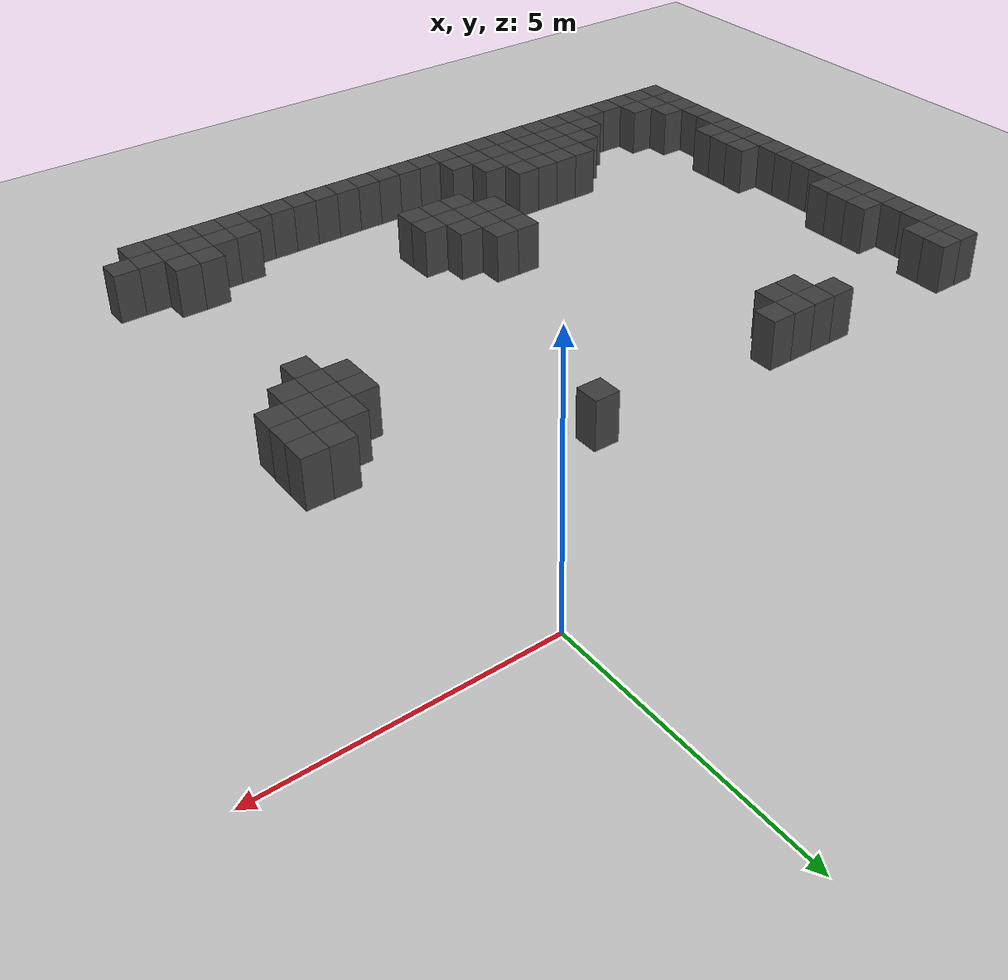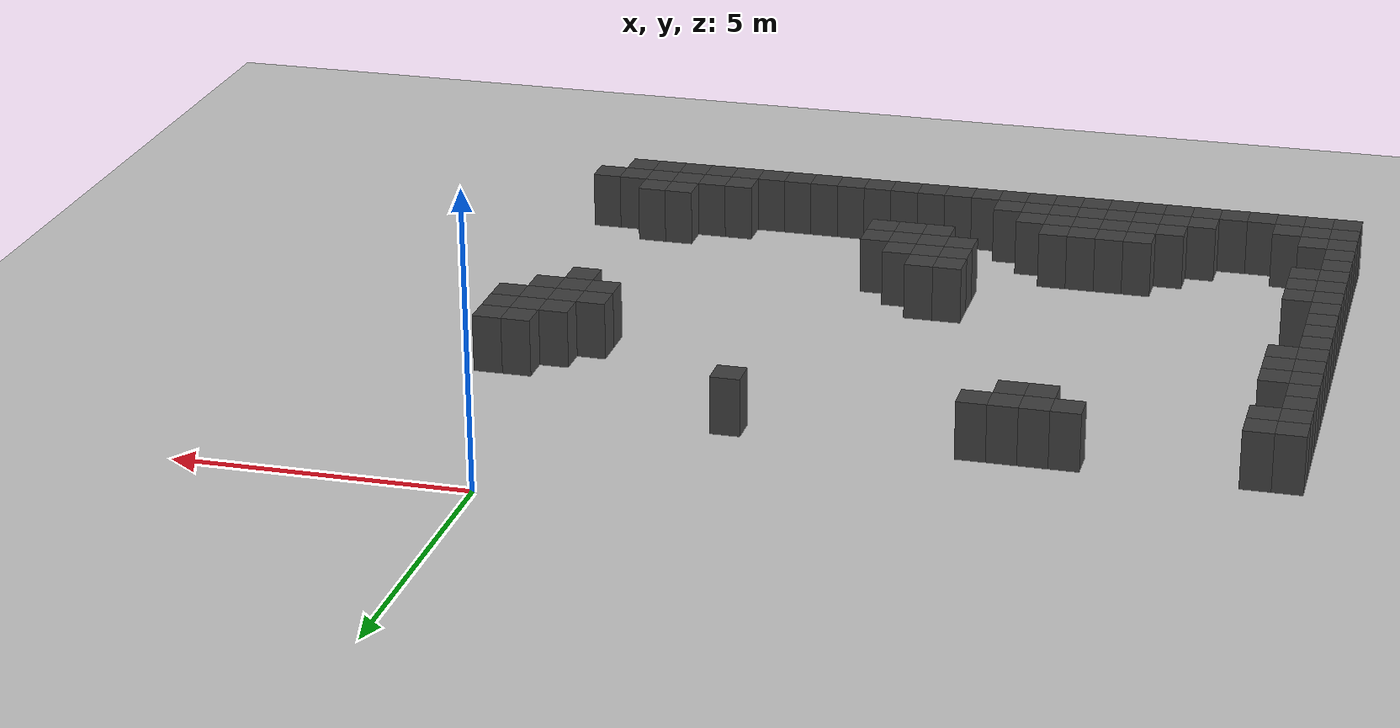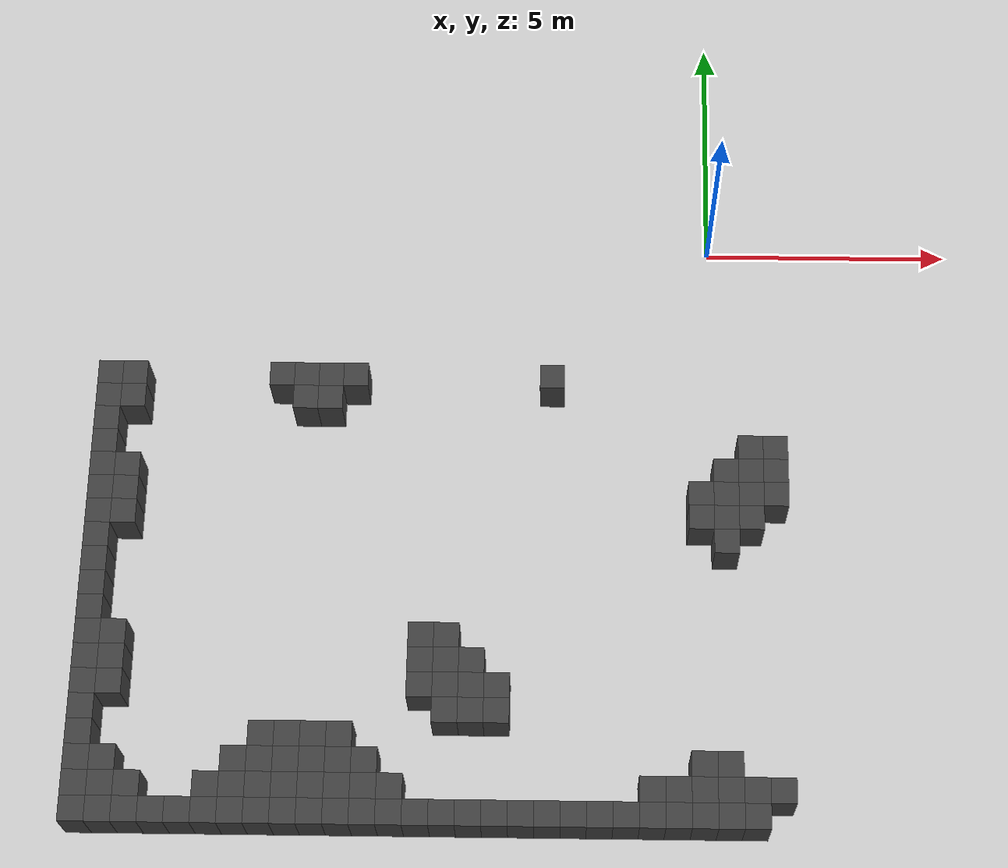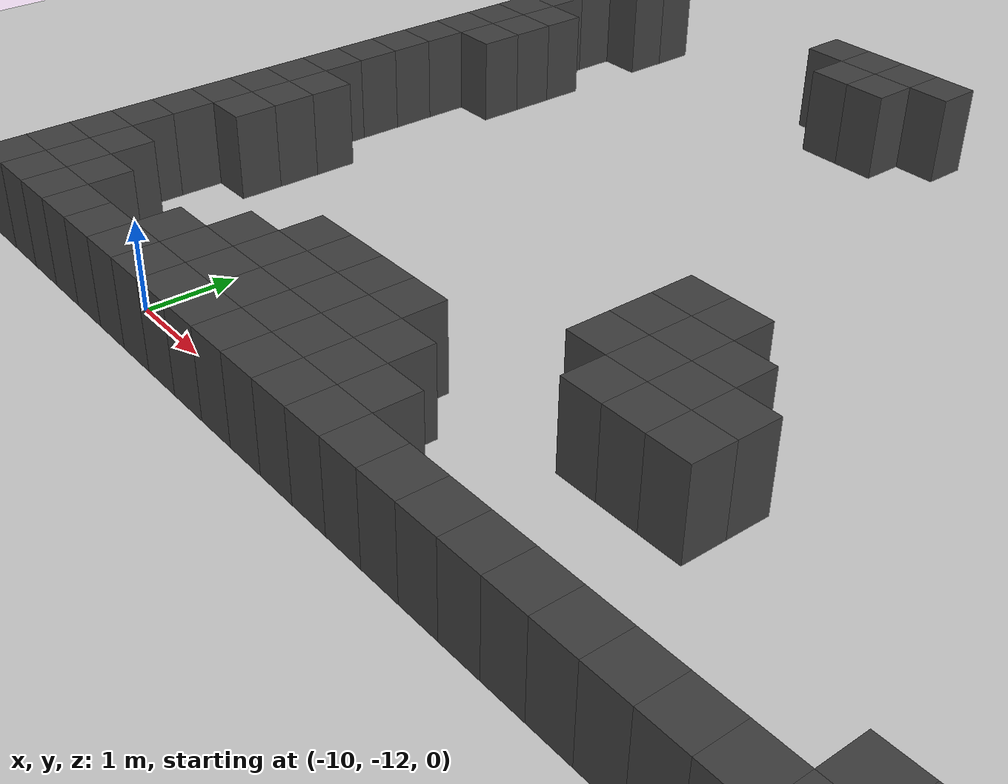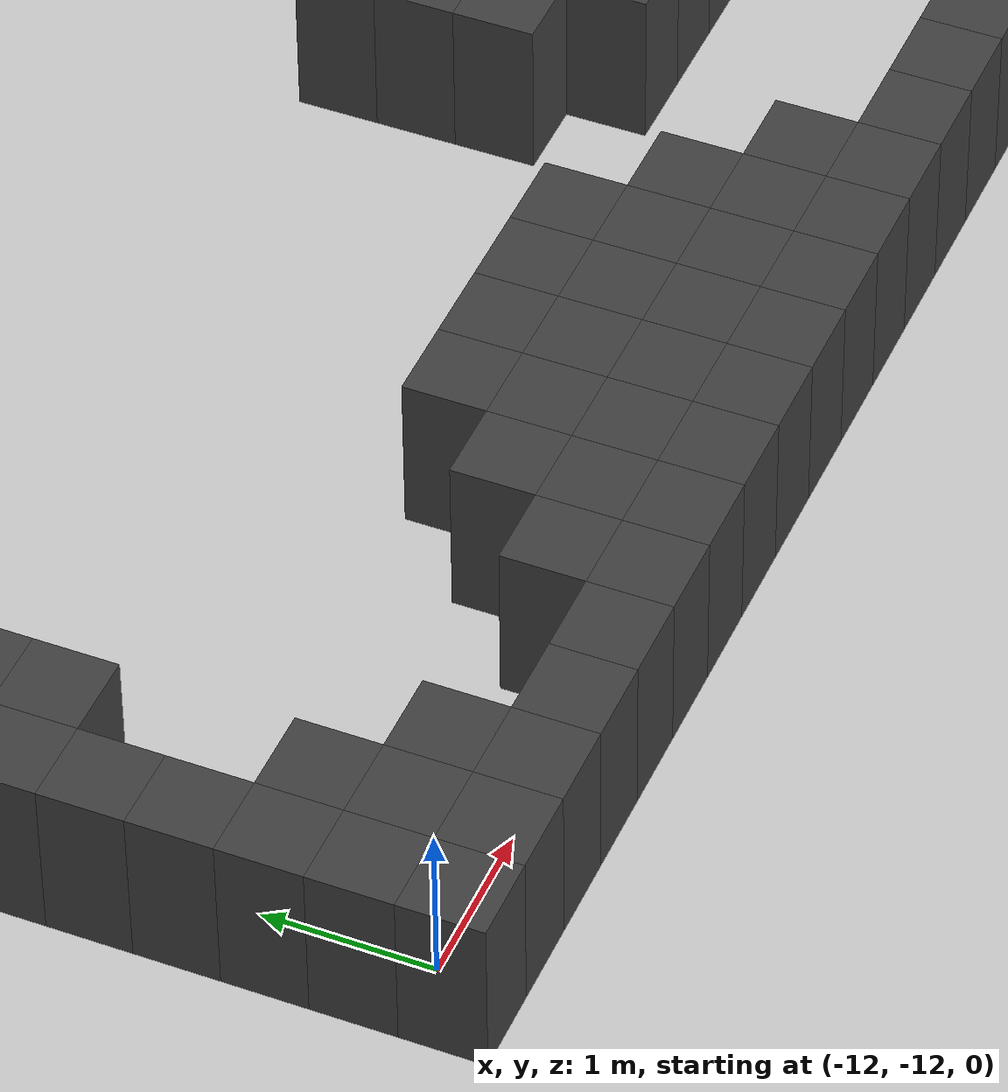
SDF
<sdf version="1.7">
 <world name="map_8829">
  <model name="ground_plane">
   <static>true</static>
   <link name="link">
    <collision name="collision">
     <geometry><plane><normal>0 0 1</normal><size>200 200</size></plane></geometry>
    </collision>
    <visual name="visual">
     <geometry><plane><normal>0 0 1</normal><size>200 200</size></plane></geometry>
     <material><ambient>0.8 0.8 0.8 1</ambient><diffuse>0.8 0.8 0.8 1</diffuse></material>
    </visual>
   </link>
  </model>
  <model name="maze_environment">
   <static>true</static>
   <link name="wall_434">
    <pose>-12.250 -3.250 0.500 0 0 0</pose>
    <collision name="col"><geometry><box><size>0.5 0.5 1.0</size></box></geometry></collision>
    <visual name="vis">
     <geometry><box><size>0.5 0.5 1.0</size></box></geometry>
     <material><ambient>0.15 0.15 0.15 1</ambient><diffuse>0.25 0.25 0.25 1</diffuse></material>
    </visual>
   </link>
   <link name="wall_435">
    <pose>-11.750 -3.250 0.500 0 0 0</pose>
    <collision name="col"><geometry><box><size>0.5 0.5 1.0</size></box></geometry></collision>
    <visual name="vis">
     <geometry><box><size>0.5 0.5 1.0</size></box></geometry>
     <material><ambient>0.15 0.15 0.15 1</ambient><diffuse>0.25 0.25 0.25 1</diffuse></material>
    </visual>
   </link>
   <link name="wall_436">
    <pose>-8.750 -3.250 0.500 0 0 0</pose>
    <collision name="col"><geometry><box><size>0.5 0.5 1.0</size></box></geometry></collision>
    <visual name="vis">
     <geometry><box><size>0.5 0.5 1.0</size></box></geometry>
     <material><ambient>0.15 0.15 0.15 1</ambient><diffuse>0.25 0.25 0.25 1</diffuse></material>
    </visual>
   </link>
   <link name="wall_437">
    <pose>-8.250 -3.250 0.500 0 0 0</pose>
    <collision name="col"><geometry><box><size>0.5 0.5 1.0</size></box></geometry></collision>
    <visual name="vis">
     <geometry><box><size>0.5 0.5 1.0</size></box></geometry>
     <material><ambient>0.15 0.15 0.15 1</ambient><diffuse>0.25 0.25 0.25 1</diffuse></material>
    </visual>
   </link>
   <link name="wall_438">
    <pose>-7.750 -3.250 0.500 0 0 0</pose>
    <collision name="col"><geometry><box><size>0.5 0.5 1.0</size></box></geometry></collision>
    <visual name="vis">
     <geometry><box><size>0.5 0.5 1.0</size></box></geometry>
     <material><ambient>0.15 0.15 0.15 1</ambient><diffuse>0.25 0.25 0.25 1</diffuse></material>
    </visual>
   </link>
   <link name="wall_439">
    <pose>-7.250 -3.250 0.500 0 0 0</pose>
    <collision name="col"><geometry><box><size>0.5 0.5 1.0</size></box></geometry></collision>
    <visual name="vis">
     <geometry><box><size>0.5 0.5 1.0</size></box></geometry>
     <material><ambient>0.15 0.15 0.15 1</ambient><diffuse>0.25 0.25 0.25 1</diffuse></material>
    </visual>
   </link>
   <link name="wall_440">
    <pose>-3.250 -3.250 0.500 0 0 0</pose>
    <collision name="col"><geometry><box><size>0.5 0.5 1.0</size></box></geometry></collision>
    <visual name="vis">
     <geometry><box><size>0.5 0.5 1.0</size></box></geometry>
     <material><ambient>0.15 0.15 0.15 1</ambient><diffuse>0.25 0.25 0.25 1</diffuse></material>
    </visual>
   </link>
   <link name="wall_452">
    <pose>-12.250 -3.750 0.500 0 0 0</pose>
    <collision name="col"><geometry><box><size>0.5 0.5 1.0</size></box></geometry></collision>
    <visual name="vis">
     <geometry><box><size>0.5 0.5 1.0</size></box></geometry>
     <material><ambient>0.15 0.15 0.15 1</ambient><diffuse>0.25 0.25 0.25 1</diffuse></material>
    </visual>
   </link>
   <link name="wall_453">
    <pose>-11.750 -3.750 0.500 0 0 0</pose>
    <collision name="col"><geometry><box><size>0.5 0.5 1.0</size></box></geometry></collision>
    <visual name="vis">
     <geometry><box><size>0.5 0.5 1.0</size></box></geometry>
     <material><ambient>0.15 0.15 0.15 1</ambient><diffuse>0.25 0.25 0.25 1</diffuse></material>
    </visual>
   </link>
   <link name="wall_454">
    <pose>-8.250 -3.750 0.500 0 0 0</pose>
    <collision name="col"><geometry><box><size>0.5 0.5 1.0</size></box></geometry></collision>
    <visual name="vis">
     <geometry><box><size>0.5 0.5 1.0</size></box></geometry>
     <material><ambient>0.15 0.15 0.15 1</ambient><diffuse>0.25 0.25 0.25 1</diffuse></material>
    </visual>
   </link>
   <link name="wall_455">
    <pose>-7.750 -3.750 0.500 0 0 0</pose>
    <collision name="col"><geometry><box><size>0.5 0.5 1.0</size></box></geometry></collision>
    <visual name="vis">
     <geometry><box><size>0.5 0.5 1.0</size></box></geometry>
     <material><ambient>0.15 0.15 0.15 1</ambient><diffuse>0.25 0.25 0.25 1</diffuse></material>
    </visual>
   </link>
   <link name="wall_461">
    <pose>-12.250 -4.250 0.500 0 0 0</pose>
    <collision name="col"><geometry><box><size>0.5 0.5 1.0</size></box></geometry></collision>
    <visual name="vis">
     <geometry><box><size>0.5 0.5 1.0</size></box></geometry>
     <material><ambient>0.15 0.15 0.15 1</ambient><diffuse>0.25 0.25 0.25 1</diffuse></material>
    </visual>
   </link>
   <link name="wall_465">
    <pose>-12.250 -4.750 0.500 0 0 0</pose>
    <collision name="col"><geometry><box><size>0.5 0.5 1.0</size></box></geometry></collision>
    <visual name="vis">
     <geometry><box><size>0.5 0.5 1.0</size></box></geometry>
     <material><ambient>0.15 0.15 0.15 1</ambient><diffuse>0.25 0.25 0.25 1</diffuse></material>
    </visual>
   </link>
   <link name="wall_466">
    <pose>0.750 -4.750 0.500 0 0 0</pose>
    <collision name="col"><geometry><box><size>0.5 0.5 1.0</size></box></geometry></collision>
    <visual name="vis">
     <geometry><box><size>0.5 0.5 1.0</size></box></geometry>
     <material><ambient>0.15 0.15 0.15 1</ambient><diffuse>0.25 0.25 0.25 1</diffuse></material>
    </visual>
   </link>
   <link name="wall_467">
    <pose>1.250 -4.750 0.500 0 0 0</pose>
    <collision name="col"><geometry><box><size>0.5 0.5 1.0</size></box></geometry></collision>
    <visual name="vis">
     <geometry><box><size>0.5 0.5 1.0</size></box></geometry>
     <material><ambient>0.15 0.15 0.15 1</ambient><diffuse>0.25 0.25 0.25 1</diffuse></material>
    </visual>
   </link>
   <link name="wall_471">
    <pose>-12.250 -5.250 0.500 0 0 0</pose>
    <collision name="col"><geometry><box><size>0.5 0.5 1.0</size></box></geometry></collision>
    <visual name="vis">
     <geometry><box><size>0.5 0.5 1.0</size></box></geometry>
     <material><ambient>0.15 0.15 0.15 1</ambient><diffuse>0.25 0.25 0.25 1</diffuse></material>
    </visual>
   </link>
   <link name="wall_472">
    <pose>-11.750 -5.250 0.500 0 0 0</pose>
    <collision name="col"><geometry><box><size>0.5 0.5 1.0</size></box></geometry></collision>
    <visual name="vis">
     <geometry><box><size>0.5 0.5 1.0</size></box></geometry>
     <material><ambient>0.15 0.15 0.15 1</ambient><diffuse>0.25 0.25 0.25 1</diffuse></material>
    </visual>
   </link>
   <link name="wall_473">
    <pose>0.250 -5.250 0.500 0 0 0</pose>
    <collision name="col"><geometry><box><size>0.5 0.5 1.0</size></box></geometry></collision>
    <visual name="vis">
     <geometry><box><size>0.5 0.5 1.0</size></box></geometry>
     <material><ambient>0.15 0.15 0.15 1</ambient><diffuse>0.25 0.25 0.25 1</diffuse></material>
    </visual>
   </link>
   <link name="wall_474">
    <pose>0.750 -5.250 0.500 0 0 0</pose>
    <collision name="col"><geometry><box><size>0.5 0.5 1.0</size></box></geometry></collision>
    <visual name="vis">
     <geometry><box><size>0.5 0.5 1.0</size></box></geometry>
     <material><ambient>0.15 0.15 0.15 1</ambient><diffuse>0.25 0.25 0.25 1</diffuse></material>
    </visual>
   </link>
   <link name="wall_475">
    <pose>1.250 -5.250 0.500 0 0 0</pose>
    <collision name="col"><geometry><box><size>0.5 0.5 1.0</size></box></geometry></collision>
    <visual name="vis">
     <geometry><box><size>0.5 0.5 1.0</size></box></geometry>
     <material><ambient>0.15 0.15 0.15 1</ambient><diffuse>0.25 0.25 0.25 1</diffuse></material>
    </visual>
   </link>
   <link name="wall_485">
    <pose>-12.250 -5.750 0.500 0 0 0</pose>
    <collision name="col"><geometry><box><size>0.5 0.5 1.0</size></box></geometry></collision>
    <visual name="vis">
     <geometry><box><size>0.5 0.5 1.0</size></box></geometry>
     <material><ambient>0.15 0.15 0.15 1</ambient><diffuse>0.25 0.25 0.25 1</diffuse></material>
    </visual>
   </link>
   <link name="wall_486">
    <pose>-11.750 -5.750 0.500 0 0 0</pose>
    <collision name="col"><geometry><box><size>0.5 0.5 1.0</size></box></geometry></collision>
    <visual name="vis">
     <geometry><box><size>0.5 0.5 1.0</size></box></geometry>
     <material><ambient>0.15 0.15 0.15 1</ambient><diffuse>0.25 0.25 0.25 1</diffuse></material>
    </visual>
   </link>
   <link name="wall_487">
    <pose>-0.250 -5.750 0.500 0 0 0</pose>
    <collision name="col"><geometry><box><size>0.5 0.5 1.0</size></box></geometry></collision>
    <visual name="vis">
     <geometry><box><size>0.5 0.5 1.0</size></box></geometry>
     <material><ambient>0.15 0.15 0.15 1</ambient><diffuse>0.25 0.25 0.25 1</diffuse></material>
    </visual>
   </link>
   <link name="wall_488">
    <pose>0.250 -5.750 0.500 0 0 0</pose>
    <collision name="col"><geometry><box><size>0.5 0.5 1.0</size></box></geometry></collision>
    <visual name="vis">
     <geometry><box><size>0.5 0.5 1.0</size></box></geometry>
     <material><ambient>0.15 0.15 0.15 1</ambient><diffuse>0.25 0.25 0.25 1</diffuse></material>
    </visual>
   </link>
   <link name="wall_489">
    <pose>0.750 -5.750 0.500 0 0 0</pose>
    <collision name="col"><geometry><box><size>0.5 0.5 1.0</size></box></geometry></collision>
    <visual name="vis">
     <geometry><box><size>0.5 0.5 1.0</size></box></geometry>
     <material><ambient>0.15 0.15 0.15 1</ambient><diffuse>0.25 0.25 0.25 1</diffuse></material>
    </visual>
   </link>
   <link name="wall_490">
    <pose>1.250 -5.750 0.500 0 0 0</pose>
    <collision name="col"><geometry><box><size>0.5 0.5 1.0</size></box></geometry></collision>
    <visual name="vis">
     <geometry><box><size>0.5 0.5 1.0</size></box></geometry>
     <material><ambient>0.15 0.15 0.15 1</ambient><diffuse>0.25 0.25 0.25 1</diffuse></material>
    </visual>
   </link>
   <link name="wall_502">
    <pose>-12.250 -6.250 0.500 0 0 0</pose>
    <collision name="col"><geometry><box><size>0.5 0.5 1.0</size></box></geometry></collision>
    <visual name="vis">
     <geometry><box><size>0.5 0.5 1.0</size></box></geometry>
     <material><ambient>0.15 0.15 0.15 1</ambient><diffuse>0.25 0.25 0.25 1</diffuse></material>
    </visual>
   </link>
   <link name="wall_503">
    <pose>-11.750 -6.250 0.500 0 0 0</pose>
    <collision name="col"><geometry><box><size>0.5 0.5 1.0</size></box></geometry></collision>
    <visual name="vis">
     <geometry><box><size>0.5 0.5 1.0</size></box></geometry>
     <material><ambient>0.15 0.15 0.15 1</ambient><diffuse>0.25 0.25 0.25 1</diffuse></material>
    </visual>
   </link>
   <link name="wall_504">
    <pose>-0.250 -6.250 0.500 0 0 0</pose>
    <collision name="col"><geometry><box><size>0.5 0.5 1.0</size></box></geometry></collision>
    <visual name="vis">
     <geometry><box><size>0.5 0.5 1.0</size></box></geometry>
     <material><ambient>0.15 0.15 0.15 1</ambient><diffuse>0.25 0.25 0.25 1</diffuse></material>
    </visual>
   </link>
   <link name="wall_505">
    <pose>0.250 -6.250 0.500 0 0 0</pose>
    <collision name="col"><geometry><box><size>0.5 0.5 1.0</size></box></geometry></collision>
    <visual name="vis">
     <geometry><box><size>0.5 0.5 1.0</size></box></geometry>
     <material><ambient>0.15 0.15 0.15 1</ambient><diffuse>0.25 0.25 0.25 1</diffuse></material>
    </visual>
   </link>
   <link name="wall_506">
    <pose>0.750 -6.250 0.500 0 0 0</pose>
    <collision name="col"><geometry><box><size>0.5 0.5 1.0</size></box></geometry></collision>
    <visual name="vis">
     <geometry><box><size>0.5 0.5 1.0</size></box></geometry>
     <material><ambient>0.15 0.15 0.15 1</ambient><diffuse>0.25 0.25 0.25 1</diffuse></material>
    </visual>
   </link>
   <link name="wall_517">
    <pose>-12.250 -6.750 0.500 0 0 0</pose>
    <collision name="col"><geometry><box><size>0.5 0.5 1.0</size></box></geometry></collision>
    <visual name="vis">
     <geometry><box><size>0.5 0.5 1.0</size></box></geometry>
     <material><ambient>0.15 0.15 0.15 1</ambient><diffuse>0.25 0.25 0.25 1</diffuse></material>
    </visual>
   </link>
   <link name="wall_518">
    <pose>0.250 -6.750 0.500 0 0 0</pose>
    <collision name="col"><geometry><box><size>0.5 0.5 1.0</size></box></geometry></collision>
    <visual name="vis">
     <geometry><box><size>0.5 0.5 1.0</size></box></geometry>
     <material><ambient>0.15 0.15 0.15 1</ambient><diffuse>0.25 0.25 0.25 1</diffuse></material>
    </visual>
   </link>
   <link name="wall_527">
    <pose>-12.250 -7.250 0.500 0 0 0</pose>
    <collision name="col"><geometry><box><size>0.5 0.5 1.0</size></box></geometry></collision>
    <visual name="vis">
     <geometry><box><size>0.5 0.5 1.0</size></box></geometry>
     <material><ambient>0.15 0.15 0.15 1</ambient><diffuse>0.25 0.25 0.25 1</diffuse></material>
    </visual>
   </link>
   <link name="wall_534">
    <pose>-12.250 -7.750 0.500 0 0 0</pose>
    <collision name="col"><geometry><box><size>0.5 0.5 1.0</size></box></geometry></collision>
    <visual name="vis">
     <geometry><box><size>0.5 0.5 1.0</size></box></geometry>
     <material><ambient>0.15 0.15 0.15 1</ambient><diffuse>0.25 0.25 0.25 1</diffuse></material>
    </visual>
   </link>
   <link name="wall_538">
    <pose>-12.250 -8.250 0.500 0 0 0</pose>
    <collision name="col"><geometry><box><size>0.5 0.5 1.0</size></box></geometry></collision>
    <visual name="vis">
     <geometry><box><size>0.5 0.5 1.0</size></box></geometry>
     <material><ambient>0.15 0.15 0.15 1</ambient><diffuse>0.25 0.25 0.25 1</diffuse></material>
    </visual>
   </link>
   <link name="wall_542">
    <pose>-12.250 -8.750 0.500 0 0 0</pose>
    <collision name="col"><geometry><box><size>0.5 0.5 1.0</size></box></geometry></collision>
    <visual name="vis">
     <geometry><box><size>0.5 0.5 1.0</size></box></geometry>
     <material><ambient>0.15 0.15 0.15 1</ambient><diffuse>0.25 0.25 0.25 1</diffuse></material>
    </visual>
   </link>
   <link name="wall_543">
    <pose>-11.750 -8.750 0.500 0 0 0</pose>
    <collision name="col"><geometry><box><size>0.5 0.5 1.0</size></box></geometry></collision>
    <visual name="vis">
     <geometry><box><size>0.5 0.5 1.0</size></box></geometry>
     <material><ambient>0.15 0.15 0.15 1</ambient><diffuse>0.25 0.25 0.25 1</diffuse></material>
    </visual>
   </link>
   <link name="wall_544">
    <pose>-5.750 -8.750 0.500 0 0 0</pose>
    <collision name="col"><geometry><box><size>0.5 0.5 1.0</size></box></geometry></collision>
    <visual name="vis">
     <geometry><box><size>0.5 0.5 1.0</size></box></geometry>
     <material><ambient>0.15 0.15 0.15 1</ambient><diffuse>0.25 0.25 0.25 1</diffuse></material>
    </visual>
   </link>
   <link name="wall_545">
    <pose>-5.250 -8.750 0.500 0 0 0</pose>
    <collision name="col"><geometry><box><size>0.5 0.5 1.0</size></box></geometry></collision>
    <visual name="vis">
     <geometry><box><size>0.5 0.5 1.0</size></box></geometry>
     <material><ambient>0.15 0.15 0.15 1</ambient><diffuse>0.25 0.25 0.25 1</diffuse></material>
    </visual>
   </link>
   <link name="wall_549">
    <pose>-12.250 -9.250 0.500 0 0 0</pose>
    <collision name="col"><geometry><box><size>0.5 0.5 1.0</size></box></geometry></collision>
    <visual name="vis">
     <geometry><box><size>0.5 0.5 1.0</size></box></geometry>
     <material><ambient>0.15 0.15 0.15 1</ambient><diffuse>0.25 0.25 0.25 1</diffuse></material>
    </visual>
   </link>
   <link name="wall_550">
    <pose>-11.750 -9.250 0.500 0 0 0</pose>
    <collision name="col"><geometry><box><size>0.5 0.5 1.0</size></box></geometry></collision>
    <visual name="vis">
     <geometry><box><size>0.5 0.5 1.0</size></box></geometry>
     <material><ambient>0.15 0.15 0.15 1</ambient><diffuse>0.25 0.25 0.25 1</diffuse></material>
    </visual>
   </link>
   <link name="wall_551">
    <pose>-5.750 -9.250 0.500 0 0 0</pose>
    <collision name="col"><geometry><box><size>0.5 0.5 1.0</size></box></geometry></collision>
    <visual name="vis">
     <geometry><box><size>0.5 0.5 1.0</size></box></geometry>
     <material><ambient>0.15 0.15 0.15 1</ambient><diffuse>0.25 0.25 0.25 1</diffuse></material>
    </visual>
   </link>
   <link name="wall_552">
    <pose>-5.250 -9.250 0.500 0 0 0</pose>
    <collision name="col"><geometry><box><size>0.5 0.5 1.0</size></box></geometry></collision>
    <visual name="vis">
     <geometry><box><size>0.5 0.5 1.0</size></box></geometry>
     <material><ambient>0.15 0.15 0.15 1</ambient><diffuse>0.25 0.25 0.25 1</diffuse></material>
    </visual>
   </link>
   <link name="wall_553">
    <pose>-4.750 -9.250 0.500 0 0 0</pose>
    <collision name="col"><geometry><box><size>0.5 0.5 1.0</size></box></geometry></collision>
    <visual name="vis">
     <geometry><box><size>0.5 0.5 1.0</size></box></geometry>
     <material><ambient>0.15 0.15 0.15 1</ambient><diffuse>0.25 0.25 0.25 1</diffuse></material>
    </visual>
   </link>
   <link name="wall_557">
    <pose>-12.250 -9.750 0.500 0 0 0</pose>
    <collision name="col"><geometry><box><size>0.5 0.5 1.0</size></box></geometry></collision>
    <visual name="vis">
     <geometry><box><size>0.5 0.5 1.0</size></box></geometry>
     <material><ambient>0.15 0.15 0.15 1</ambient><diffuse>0.25 0.25 0.25 1</diffuse></material>
    </visual>
   </link>
   <link name="wall_558">
    <pose>-11.750 -9.750 0.500 0 0 0</pose>
    <collision name="col"><geometry><box><size>0.5 0.5 1.0</size></box></geometry></collision>
    <visual name="vis">
     <geometry><box><size>0.5 0.5 1.0</size></box></geometry>
     <material><ambient>0.15 0.15 0.15 1</ambient><diffuse>0.25 0.25 0.25 1</diffuse></material>
    </visual>
   </link>
   <link name="wall_559">
    <pose>-5.750 -9.750 0.500 0 0 0</pose>
    <collision name="col"><geometry><box><size>0.5 0.5 1.0</size></box></geometry></collision>
    <visual name="vis">
     <geometry><box><size>0.5 0.5 1.0</size></box></geometry>
     <material><ambient>0.15 0.15 0.15 1</ambient><diffuse>0.25 0.25 0.25 1</diffuse></material>
    </visual>
   </link>
   <link name="wall_560">
    <pose>-5.250 -9.750 0.500 0 0 0</pose>
    <collision name="col"><geometry><box><size>0.5 0.5 1.0</size></box></geometry></collision>
    <visual name="vis">
     <geometry><box><size>0.5 0.5 1.0</size></box></geometry>
     <material><ambient>0.15 0.15 0.15 1</ambient><diffuse>0.25 0.25 0.25 1</diffuse></material>
    </visual>
   </link>
   <link name="wall_561">
    <pose>-4.750 -9.750 0.500 0 0 0</pose>
    <collision name="col"><geometry><box><size>0.5 0.5 1.0</size></box></geometry></collision>
    <visual name="vis">
     <geometry><box><size>0.5 0.5 1.0</size></box></geometry>
     <material><ambient>0.15 0.15 0.15 1</ambient><diffuse>0.25 0.25 0.25 1</diffuse></material>
    </visual>
   </link>
   <link name="wall_562">
    <pose>-4.250 -9.750 0.500 0 0 0</pose>
    <collision name="col"><geometry><box><size>0.5 0.5 1.0</size></box></geometry></collision>
    <visual name="vis">
     <geometry><box><size>0.5 0.5 1.0</size></box></geometry>
     <material><ambient>0.15 0.15 0.15 1</ambient><diffuse>0.25 0.25 0.25 1</diffuse></material>
    </visual>
   </link>
   <link name="wall_566">
    <pose>-12.250 -10.250 0.500 0 0 0</pose>
    <collision name="col"><geometry><box><size>0.5 0.5 1.0</size></box></geometry></collision>
    <visual name="vis">
     <geometry><box><size>0.5 0.5 1.0</size></box></geometry>
     <material><ambient>0.15 0.15 0.15 1</ambient><diffuse>0.25 0.25 0.25 1</diffuse></material>
    </visual>
   </link>
   <link name="wall_567">
    <pose>-5.250 -10.250 0.500 0 0 0</pose>
    <collision name="col"><geometry><box><size>0.5 0.5 1.0</size></box></geometry></collision>
    <visual name="vis">
     <geometry><box><size>0.5 0.5 1.0</size></box></geometry>
     <material><ambient>0.15 0.15 0.15 1</ambient><diffuse>0.25 0.25 0.25 1</diffuse></material>
    </visual>
   </link>
   <link name="wall_568">
    <pose>-4.750 -10.250 0.500 0 0 0</pose>
    <collision name="col"><geometry><box><size>0.5 0.5 1.0</size></box></geometry></collision>
    <visual name="vis">
     <geometry><box><size>0.5 0.5 1.0</size></box></geometry>
     <material><ambient>0.15 0.15 0.15 1</ambient><diffuse>0.25 0.25 0.25 1</diffuse></material>
    </visual>
   </link>
   <link name="wall_569">
    <pose>-4.250 -10.250 0.500 0 0 0</pose>
    <collision name="col"><geometry><box><size>0.5 0.5 1.0</size></box></geometry></collision>
    <visual name="vis">
     <geometry><box><size>0.5 0.5 1.0</size></box></geometry>
     <material><ambient>0.15 0.15 0.15 1</ambient><diffuse>0.25 0.25 0.25 1</diffuse></material>
    </visual>
   </link>
   <link name="wall_574">
    <pose>-12.250 -10.750 0.500 0 0 0</pose>
    <collision name="col"><geometry><box><size>0.5 0.5 1.0</size></box></geometry></collision>
    <visual name="vis">
     <geometry><box><size>0.5 0.5 1.0</size></box></geometry>
     <material><ambient>0.15 0.15 0.15 1</ambient><diffuse>0.25 0.25 0.25 1</diffuse></material>
    </visual>
   </link>
   <link name="wall_575">
    <pose>-8.750 -10.750 0.500 0 0 0</pose>
    <collision name="col"><geometry><box><size>0.5 0.5 1.0</size></box></geometry></collision>
    <visual name="vis">
     <geometry><box><size>0.5 0.5 1.0</size></box></geometry>
     <material><ambient>0.15 0.15 0.15 1</ambient><diffuse>0.25 0.25 0.25 1</diffuse></material>
    </visual>
   </link>
   <link name="wall_576">
    <pose>-8.250 -10.750 0.500 0 0 0</pose>
    <collision name="col"><geometry><box><size>0.5 0.5 1.0</size></box></geometry></collision>
    <visual name="vis">
     <geometry><box><size>0.5 0.5 1.0</size></box></geometry>
     <material><ambient>0.15 0.15 0.15 1</ambient><diffuse>0.25 0.25 0.25 1</diffuse></material>
    </visual>
   </link>
   <link name="wall_577">
    <pose>-7.750 -10.750 0.500 0 0 0</pose>
    <collision name="col"><geometry><box><size>0.5 0.5 1.0</size></box></geometry></collision>
    <visual name="vis">
     <geometry><box><size>0.5 0.5 1.0</size></box></geometry>
     <material><ambient>0.15 0.15 0.15 1</ambient><diffuse>0.25 0.25 0.25 1</diffuse></material>
    </visual>
   </link>
   <link name="wall_578">
    <pose>-7.250 -10.750 0.500 0 0 0</pose>
    <collision name="col"><geometry><box><size>0.5 0.5 1.0</size></box></geometry></collision>
    <visual name="vis">
     <geometry><box><size>0.5 0.5 1.0</size></box></geometry>
     <material><ambient>0.15 0.15 0.15 1</ambient><diffuse>0.25 0.25 0.25 1</diffuse></material>
    </visual>
   </link>
   <link name="wall_583">
    <pose>-12.250 -11.250 0.500 0 0 0</pose>
    <collision name="col"><geometry><box><size>0.5 0.5 1.0</size></box></geometry></collision>
    <visual name="vis">
     <geometry><box><size>0.5 0.5 1.0</size></box></geometry>
     <material><ambient>0.15 0.15 0.15 1</ambient><diffuse>0.25 0.25 0.25 1</diffuse></material>
    </visual>
   </link>
   <link name="wall_584">
    <pose>-11.750 -11.250 0.500 0 0 0</pose>
    <collision name="col"><geometry><box><size>0.5 0.5 1.0</size></box></geometry></collision>
    <visual name="vis">
     <geometry><box><size>0.5 0.5 1.0</size></box></geometry>
     <material><ambient>0.15 0.15 0.15 1</ambient><diffuse>0.25 0.25 0.25 1</diffuse></material>
    </visual>
   </link>
   <link name="wall_585">
    <pose>-9.250 -11.250 0.500 0 0 0</pose>
    <collision name="col"><geometry><box><size>0.5 0.5 1.0</size></box></geometry></collision>
    <visual name="vis">
     <geometry><box><size>0.5 0.5 1.0</size></box></geometry>
     <material><ambient>0.15 0.15 0.15 1</ambient><diffuse>0.25 0.25 0.25 1</diffuse></material>
    </visual>
   </link>
   <link name="wall_586">
    <pose>-8.750 -11.250 0.500 0 0 0</pose>
    <collision name="col"><geometry><box><size>0.5 0.5 1.0</size></box></geometry></collision>
    <visual name="vis">
     <geometry><box><size>0.5 0.5 1.0</size></box></geometry>
     <material><ambient>0.15 0.15 0.15 1</ambient><diffuse>0.25 0.25 0.25 1</diffuse></material>
    </visual>
   </link>
   <link name="wall_587">
    <pose>-8.250 -11.250 0.500 0 0 0</pose>
    <collision name="col"><geometry><box><size>0.5 0.5 1.0</size></box></geometry></collision>
    <visual name="vis">
     <geometry><box><size>0.5 0.5 1.0</size></box></geometry>
     <material><ambient>0.15 0.15 0.15 1</ambient><diffuse>0.25 0.25 0.25 1</diffuse></material>
    </visual>
   </link>
   <link name="wall_588">
    <pose>-7.750 -11.250 0.500 0 0 0</pose>
    <collision name="col"><geometry><box><size>0.5 0.5 1.0</size></box></geometry></collision>
    <visual name="vis">
     <geometry><box><size>0.5 0.5 1.0</size></box></geometry>
     <material><ambient>0.15 0.15 0.15 1</ambient><diffuse>0.25 0.25 0.25 1</diffuse></material>
    </visual>
   </link>
   <link name="wall_589">
    <pose>-7.250 -11.250 0.500 0 0 0</pose>
    <collision name="col"><geometry><box><size>0.5 0.5 1.0</size></box></geometry></collision>
    <visual name="vis">
     <geometry><box><size>0.5 0.5 1.0</size></box></geometry>
     <material><ambient>0.15 0.15 0.15 1</ambient><diffuse>0.25 0.25 0.25 1</diffuse></material>
    </visual>
   </link>
   <link name="wall_590">
    <pose>-6.750 -11.250 0.500 0 0 0</pose>
    <collision name="col"><geometry><box><size>0.5 0.5 1.0</size></box></geometry></collision>
    <visual name="vis">
     <geometry><box><size>0.5 0.5 1.0</size></box></geometry>
     <material><ambient>0.15 0.15 0.15 1</ambient><diffuse>0.25 0.25 0.25 1</diffuse></material>
    </visual>
   </link>
   <link name="wall_591">
    <pose>-0.250 -11.250 0.500 0 0 0</pose>
    <collision name="col"><geometry><box><size>0.5 0.5 1.0</size></box></geometry></collision>
    <visual name="vis">
     <geometry><box><size>0.5 0.5 1.0</size></box></geometry>
     <material><ambient>0.15 0.15 0.15 1</ambient><diffuse>0.25 0.25 0.25 1</diffuse></material>
    </visual>
   </link>
   <link name="wall_592">
    <pose>0.250 -11.250 0.500 0 0 0</pose>
    <collision name="col"><geometry><box><size>0.5 0.5 1.0</size></box></geometry></collision>
    <visual name="vis">
     <geometry><box><size>0.5 0.5 1.0</size></box></geometry>
     <material><ambient>0.15 0.15 0.15 1</ambient><diffuse>0.25 0.25 0.25 1</diffuse></material>
    </visual>
   </link>
   <link name="wall_605">
    <pose>-12.250 -11.750 0.500 0 0 0</pose>
    <collision name="col"><geometry><box><size>0.5 0.5 1.0</size></box></geometry></collision>
    <visual name="vis">
     <geometry><box><size>0.5 0.5 1.0</size></box></geometry>
     <material><ambient>0.15 0.15 0.15 1</ambient><diffuse>0.25 0.25 0.25 1</diffuse></material>
    </visual>
   </link>
   <link name="wall_606">
    <pose>-11.750 -11.750 0.500 0 0 0</pose>
    <collision name="col"><geometry><box><size>0.5 0.5 1.0</size></box></geometry></collision>
    <visual name="vis">
     <geometry><box><size>0.5 0.5 1.0</size></box></geometry>
     <material><ambient>0.15 0.15 0.15 1</ambient><diffuse>0.25 0.25 0.25 1</diffuse></material>
    </visual>
   </link>
   <link name="wall_607">
    <pose>-11.250 -11.750 0.500 0 0 0</pose>
    <collision name="col"><geometry><box><size>0.5 0.5 1.0</size></box></geometry></collision>
    <visual name="vis">
     <geometry><box><size>0.5 0.5 1.0</size></box></geometry>
     <material><ambient>0.15 0.15 0.15 1</ambient><diffuse>0.25 0.25 0.25 1</diffuse></material>
    </visual>
   </link>
   <link name="wall_608">
    <pose>-9.750 -11.750 0.500 0 0 0</pose>
    <collision name="col"><geometry><box><size>0.5 0.5 1.0</size></box></geometry></collision>
    <visual name="vis">
     <geometry><box><size>0.5 0.5 1.0</size></box></geometry>
     <material><ambient>0.15 0.15 0.15 1</ambient><diffuse>0.25 0.25 0.25 1</diffuse></material>
    </visual>
   </link>
   <link name="wall_609">
    <pose>-9.250 -11.750 0.500 0 0 0</pose>
    <collision name="col"><geometry><box><size>0.5 0.5 1.0</size></box></geometry></collision>
    <visual name="vis">
     <geometry><box><size>0.5 0.5 1.0</size></box></geometry>
     <material><ambient>0.15 0.15 0.15 1</ambient><diffuse>0.25 0.25 0.25 1</diffuse></material>
    </visual>
   </link>
   <link name="wall_610">
    <pose>-8.750 -11.750 0.500 0 0 0</pose>
    <collision name="col"><geometry><box><size>0.5 0.5 1.0</size></box></geometry></collision>
    <visual name="vis">
     <geometry><box><size>0.5 0.5 1.0</size></box></geometry>
     <material><ambient>0.15 0.15 0.15 1</ambient><diffuse>0.25 0.25 0.25 1</diffuse></material>
    </visual>
   </link>
   <link name="wall_611">
    <pose>-8.250 -11.750 0.500 0 0 0</pose>
    <collision name="col"><geometry><box><size>0.5 0.5 1.0</size></box></geometry></collision>
    <visual name="vis">
     <geometry><box><size>0.5 0.5 1.0</size></box></geometry>
     <material><ambient>0.15 0.15 0.15 1</ambient><diffuse>0.25 0.25 0.25 1</diffuse></material>
    </visual>
   </link>
   <link name="wall_612">
    <pose>-7.750 -11.750 0.500 0 0 0</pose>
    <collision name="col"><geometry><box><size>0.5 0.5 1.0</size></box></geometry></collision>
    <visual name="vis">
     <geometry><box><size>0.5 0.5 1.0</size></box></geometry>
     <material><ambient>0.15 0.15 0.15 1</ambient><diffuse>0.25 0.25 0.25 1</diffuse></material>
    </visual>
   </link>
   <link name="wall_613">
    <pose>-7.250 -11.750 0.500 0 0 0</pose>
    <collision name="col"><geometry><box><size>0.5 0.5 1.0</size></box></geometry></collision>
    <visual name="vis">
     <geometry><box><size>0.5 0.5 1.0</size></box></geometry>
     <material><ambient>0.15 0.15 0.15 1</ambient><diffuse>0.25 0.25 0.25 1</diffuse></material>
    </visual>
   </link>
   <link name="wall_614">
    <pose>-6.750 -11.750 0.500 0 0 0</pose>
    <collision name="col"><geometry><box><size>0.5 0.5 1.0</size></box></geometry></collision>
    <visual name="vis">
     <geometry><box><size>0.5 0.5 1.0</size></box></geometry>
     <material><ambient>0.15 0.15 0.15 1</ambient><diffuse>0.25 0.25 0.25 1</diffuse></material>
    </visual>
   </link>
   <link name="wall_615">
    <pose>-6.250 -11.750 0.500 0 0 0</pose>
    <collision name="col"><geometry><box><size>0.5 0.5 1.0</size></box></geometry></collision>
    <visual name="vis">
     <geometry><box><size>0.5 0.5 1.0</size></box></geometry>
     <material><ambient>0.15 0.15 0.15 1</ambient><diffuse>0.25 0.25 0.25 1</diffuse></material>
    </visual>
   </link>
   <link name="wall_616">
    <pose>-1.250 -11.750 0.500 0 0 0</pose>
    <collision name="col"><geometry><box><size>0.5 0.5 1.0</size></box></geometry></collision>
    <visual name="vis">
     <geometry><box><size>0.5 0.5 1.0</size></box></geometry>
     <material><ambient>0.15 0.15 0.15 1</ambient><diffuse>0.25 0.25 0.25 1</diffuse></material>
    </visual>
   </link>
   <link name="wall_617">
    <pose>-0.750 -11.750 0.500 0 0 0</pose>
    <collision name="col"><geometry><box><size>0.5 0.5 1.0</size></box></geometry></collision>
    <visual name="vis">
     <geometry><box><size>0.5 0.5 1.0</size></box></geometry>
     <material><ambient>0.15 0.15 0.15 1</ambient><diffuse>0.25 0.25 0.25 1</diffuse></material>
    </visual>
   </link>
   <link name="wall_618">
    <pose>-0.250 -11.750 0.500 0 0 0</pose>
    <collision name="col"><geometry><box><size>0.5 0.5 1.0</size></box></geometry></collision>
    <visual name="vis">
     <geometry><box><size>0.5 0.5 1.0</size></box></geometry>
     <material><ambient>0.15 0.15 0.15 1</ambient><diffuse>0.25 0.25 0.25 1</diffuse></material>
    </visual>
   </link>
   <link name="wall_619">
    <pose>0.250 -11.750 0.500 0 0 0</pose>
    <collision name="col"><geometry><box><size>0.5 0.5 1.0</size></box></geometry></collision>
    <visual name="vis">
     <geometry><box><size>0.5 0.5 1.0</size></box></geometry>
     <material><ambient>0.15 0.15 0.15 1</ambient><diffuse>0.25 0.25 0.25 1</diffuse></material>
    </visual>
   </link>
   <link name="wall_620">
    <pose>0.750 -11.750 0.500 0 0 0</pose>
    <collision name="col"><geometry><box><size>0.5 0.5 1.0</size></box></geometry></collision>
    <visual name="vis">
     <geometry><box><size>0.5 0.5 1.0</size></box></geometry>
     <material><ambient>0.15 0.15 0.15 1</ambient><diffuse>0.25 0.25 0.25 1</diffuse></material>
    </visual>
   </link>
   <link name="wall_621">
    <pose>1.250 -11.750 0.500 0 0 0</pose>
    <collision name="col"><geometry><box><size>0.5 0.5 1.0</size></box></geometry></collision>
    <visual name="vis">
     <geometry><box><size>0.5 0.5 1.0</size></box></geometry>
     <material><ambient>0.15 0.15 0.15 1</ambient><diffuse>0.25 0.25 0.25 1</diffuse></material>
    </visual>
   </link>
   <link name="wall_637">
    <pose>-12.250 -12.250 0.500 0 0 0</pose>
    <collision name="col"><geometry><box><size>0.5 0.5 1.0</size></box></geometry></collision>
    <visual name="vis">
     <geometry><box><size>0.5 0.5 1.0</size></box></geometry>
     <material><ambient>0.15 0.15 0.15 1</ambient><diffuse>0.25 0.25 0.25 1</diffuse></material>
    </visual>
   </link>
   <link name="wall_638">
    <pose>-11.750 -12.250 0.500 0 0 0</pose>
    <collision name="col"><geometry><box><size>0.5 0.5 1.0</size></box></geometry></collision>
    <visual name="vis">
     <geometry><box><size>0.5 0.5 1.0</size></box></geometry>
     <material><ambient>0.15 0.15 0.15 1</ambient><diffuse>0.25 0.25 0.25 1</diffuse></material>
    </visual>
   </link>
   <link name="wall_639">
    <pose>-11.250 -12.250 0.500 0 0 0</pose>
    <collision name="col"><geometry><box><size>0.5 0.5 1.0</size></box></geometry></collision>
    <visual name="vis">
     <geometry><box><size>0.5 0.5 1.0</size></box></geometry>
     <material><ambient>0.15 0.15 0.15 1</ambient><diffuse>0.25 0.25 0.25 1</diffuse></material>
    </visual>
   </link>
   <link name="wall_640">
    <pose>-10.750 -12.250 0.500 0 0 0</pose>
    <collision name="col"><geometry><box><size>0.5 0.5 1.0</size></box></geometry></collision>
    <visual name="vis">
     <geometry><box><size>0.5 0.5 1.0</size></box></geometry>
     <material><ambient>0.15 0.15 0.15 1</ambient><diffuse>0.25 0.25 0.25 1</diffuse></material>
    </visual>
   </link>
   <link name="wall_641">
    <pose>-10.250 -12.250 0.500 0 0 0</pose>
    <collision name="col"><geometry><box><size>0.5 0.5 1.0</size></box></geometry></collision>
    <visual name="vis">
     <geometry><box><size>0.5 0.5 1.0</size></box></geometry>
     <material><ambient>0.15 0.15 0.15 1</ambient><diffuse>0.25 0.25 0.25 1</diffuse></material>
    </visual>
   </link>
   <link name="wall_642">
    <pose>-9.750 -12.250 0.500 0 0 0</pose>
    <collision name="col"><geometry><box><size>0.5 0.5 1.0</size></box></geometry></collision>
    <visual name="vis">
     <geometry><box><size>0.5 0.5 1.0</size></box></geometry>
     <material><ambient>0.15 0.15 0.15 1</ambient><diffuse>0.25 0.25 0.25 1</diffuse></material>
    </visual>
   </link>
   <link name="wall_643">
    <pose>-9.250 -12.250 0.500 0 0 0</pose>
    <collision name="col"><geometry><box><size>0.5 0.5 1.0</size></box></geometry></collision>
    <visual name="vis">
     <geometry><box><size>0.5 0.5 1.0</size></box></geometry>
     <material><ambient>0.15 0.15 0.15 1</ambient><diffuse>0.25 0.25 0.25 1</diffuse></material>
    </visual>
   </link>
   <link name="wall_644">
    <pose>-8.750 -12.250 0.500 0 0 0</pose>
    <collision name="col"><geometry><box><size>0.5 0.5 1.0</size></box></geometry></collision>
    <visual name="vis">
     <geometry><box><size>0.5 0.5 1.0</size></box></geometry>
     <material><ambient>0.15 0.15 0.15 1</ambient><diffuse>0.25 0.25 0.25 1</diffuse></material>
    </visual>
   </link>
   <link name="wall_645">
    <pose>-8.250 -12.250 0.500 0 0 0</pose>
    <collision name="col"><geometry><box><size>0.5 0.5 1.0</size></box></geometry></collision>
    <visual name="vis">
     <geometry><box><size>0.5 0.5 1.0</size></box></geometry>
     <material><ambient>0.15 0.15 0.15 1</ambient><diffuse>0.25 0.25 0.25 1</diffuse></material>
    </visual>
   </link>
   <link name="wall_646">
    <pose>-7.750 -12.250 0.500 0 0 0</pose>
    <collision name="col"><geometry><box><size>0.5 0.5 1.0</size></box></geometry></collision>
    <visual name="vis">
     <geometry><box><size>0.5 0.5 1.0</size></box></geometry>
     <material><ambient>0.15 0.15 0.15 1</ambient><diffuse>0.25 0.25 0.25 1</diffuse></material>
    </visual>
   </link>
   <link name="wall_647">
    <pose>-7.250 -12.250 0.500 0 0 0</pose>
    <collision name="col"><geometry><box><size>0.5 0.5 1.0</size></box></geometry></collision>
    <visual name="vis">
     <geometry><box><size>0.5 0.5 1.0</size></box></geometry>
     <material><ambient>0.15 0.15 0.15 1</ambient><diffuse>0.25 0.25 0.25 1</diffuse></material>
    </visual>
   </link>
   <link name="wall_648">
    <pose>-6.750 -12.250 0.500 0 0 0</pose>
    <collision name="col"><geometry><box><size>0.5 0.5 1.0</size></box></geometry></collision>
    <visual name="vis">
     <geometry><box><size>0.5 0.5 1.0</size></box></geometry>
     <material><ambient>0.15 0.15 0.15 1</ambient><diffuse>0.25 0.25 0.25 1</diffuse></material>
    </visual>
   </link>
   <link name="wall_649">
    <pose>-6.250 -12.250 0.500 0 0 0</pose>
    <collision name="col"><geometry><box><size>0.5 0.5 1.0</size></box></geometry></collision>
    <visual name="vis">
     <geometry><box><size>0.5 0.5 1.0</size></box></geometry>
     <material><ambient>0.15 0.15 0.15 1</ambient><diffuse>0.25 0.25 0.25 1</diffuse></material>
    </visual>
   </link>
   <link name="wall_650">
    <pose>-5.750 -12.250 0.500 0 0 0</pose>
    <collision name="col"><geometry><box><size>0.5 0.5 1.0</size></box></geometry></collision>
    <visual name="vis">
     <geometry><box><size>0.5 0.5 1.0</size></box></geometry>
     <material><ambient>0.15 0.15 0.15 1</ambient><diffuse>0.25 0.25 0.25 1</diffuse></material>
    </visual>
   </link>
   <link name="wall_651">
    <pose>-5.250 -12.250 0.500 0 0 0</pose>
    <collision name="col"><geometry><box><size>0.5 0.5 1.0</size></box></geometry></collision>
    <visual name="vis">
     <geometry><box><size>0.5 0.5 1.0</size></box></geometry>
     <material><ambient>0.15 0.15 0.15 1</ambient><diffuse>0.25 0.25 0.25 1</diffuse></material>
    </visual>
   </link>
   <link name="wall_652">
    <pose>-4.750 -12.250 0.500 0 0 0</pose>
    <collision name="col"><geometry><box><size>0.5 0.5 1.0</size></box></geometry></collision>
    <visual name="vis">
     <geometry><box><size>0.5 0.5 1.0</size></box></geometry>
     <material><ambient>0.15 0.15 0.15 1</ambient><diffuse>0.25 0.25 0.25 1</diffuse></material>
    </visual>
   </link>
   <link name="wall_653">
    <pose>-4.250 -12.250 0.500 0 0 0</pose>
    <collision name="col"><geometry><box><size>0.5 0.5 1.0</size></box></geometry></collision>
    <visual name="vis">
     <geometry><box><size>0.5 0.5 1.0</size></box></geometry>
     <material><ambient>0.15 0.15 0.15 1</ambient><diffuse>0.25 0.25 0.25 1</diffuse></material>
    </visual>
   </link>
   <link name="wall_654">
    <pose>-3.750 -12.250 0.500 0 0 0</pose>
    <collision name="col"><geometry><box><size>0.5 0.5 1.0</size></box></geometry></collision>
    <visual name="vis">
     <geometry><box><size>0.5 0.5 1.0</size></box></geometry>
     <material><ambient>0.15 0.15 0.15 1</ambient><diffuse>0.25 0.25 0.25 1</diffuse></material>
    </visual>
   </link>
   <link name="wall_655">
    <pose>-3.250 -12.250 0.500 0 0 0</pose>
    <collision name="col"><geometry><box><size>0.5 0.5 1.0</size></box></geometry></collision>
    <visual name="vis">
     <geometry><box><size>0.5 0.5 1.0</size></box></geometry>
     <material><ambient>0.15 0.15 0.15 1</ambient><diffuse>0.25 0.25 0.25 1</diffuse></material>
    </visual>
   </link>
   <link name="wall_656">
    <pose>-2.750 -12.250 0.500 0 0 0</pose>
    <collision name="col"><geometry><box><size>0.5 0.5 1.0</size></box></geometry></collision>
    <visual name="vis">
     <geometry><box><size>0.5 0.5 1.0</size></box></geometry>
     <material><ambient>0.15 0.15 0.15 1</ambient><diffuse>0.25 0.25 0.25 1</diffuse></material>
    </visual>
   </link>
   <link name="wall_657">
    <pose>-2.250 -12.250 0.500 0 0 0</pose>
    <collision name="col"><geometry><box><size>0.5 0.5 1.0</size></box></geometry></collision>
    <visual name="vis">
     <geometry><box><size>0.5 0.5 1.0</size></box></geometry>
     <material><ambient>0.15 0.15 0.15 1</ambient><diffuse>0.25 0.25 0.25 1</diffuse></material>
    </visual>
   </link>
   <link name="wall_658">
    <pose>-1.750 -12.250 0.500 0 0 0</pose>
    <collision name="col"><geometry><box><size>0.5 0.5 1.0</size></box></geometry></collision>
    <visual name="vis">
     <geometry><box><size>0.5 0.5 1.0</size></box></geometry>
     <material><ambient>0.15 0.15 0.15 1</ambient><diffuse>0.25 0.25 0.25 1</diffuse></material>
    </visual>
   </link>
   <link name="wall_659">
    <pose>-1.250 -12.250 0.500 0 0 0</pose>
    <collision name="col"><geometry><box><size>0.5 0.5 1.0</size></box></geometry></collision>
    <visual name="vis">
     <geometry><box><size>0.5 0.5 1.0</size></box></geometry>
     <material><ambient>0.15 0.15 0.15 1</ambient><diffuse>0.25 0.25 0.25 1</diffuse></material>
    </visual>
   </link>
   <link name="wall_660">
    <pose>-0.750 -12.250 0.500 0 0 0</pose>
    <collision name="col"><geometry><box><size>0.5 0.5 1.0</size></box></geometry></collision>
    <visual name="vis">
     <geometry><box><size>0.5 0.5 1.0</size></box></geometry>
     <material><ambient>0.15 0.15 0.15 1</ambient><diffuse>0.25 0.25 0.25 1</diffuse></material>
    </visual>
   </link>
   <link name="wall_661">
    <pose>-0.250 -12.250 0.500 0 0 0</pose>
    <collision name="col"><geometry><box><size>0.5 0.5 1.0</size></box></geometry></collision>
    <visual name="vis">
     <geometry><box><size>0.5 0.5 1.0</size></box></geometry>
     <material><ambient>0.15 0.15 0.15 1</ambient><diffuse>0.25 0.25 0.25 1</diffuse></material>
    </visual>
   </link>
   <link name="wall_662">
    <pose>0.250 -12.250 0.500 0 0 0</pose>
    <collision name="col"><geometry><box><size>0.5 0.5 1.0</size></box></geometry></collision>
    <visual name="vis">
     <geometry><box><size>0.5 0.5 1.0</size></box></geometry>
     <material><ambient>0.15 0.15 0.15 1</ambient><diffuse>0.25 0.25 0.25 1</diffuse></material>
    </visual>
   </link>
   <link name="wall_663">
    <pose>0.750 -12.250 0.500 0 0 0</pose>
    <collision name="col"><geometry><box><size>0.5 0.5 1.0</size></box></geometry></collision>
    <visual name="vis">
     <geometry><box><size>0.5 0.5 1.0</size></box></geometry>
     <material><ambient>0.15 0.15 0.15 1</ambient><diffuse>0.25 0.25 0.25 1</diffuse></material>
    </visual>
   </link>
  </model>
 </world>
</sdf>
